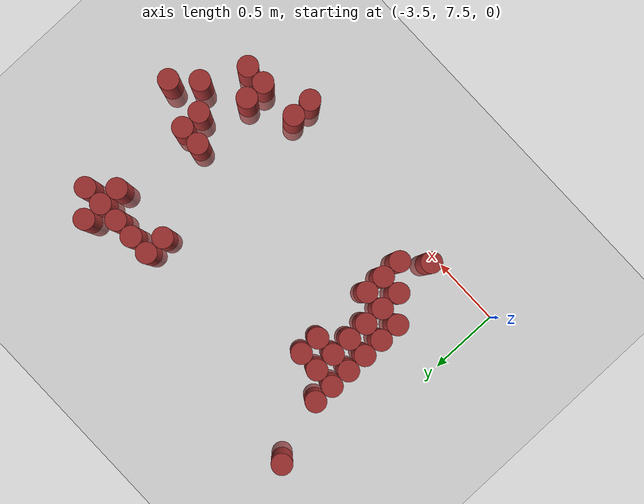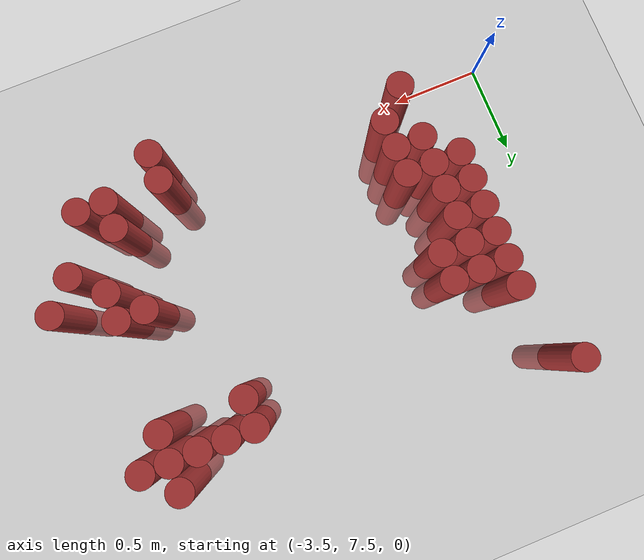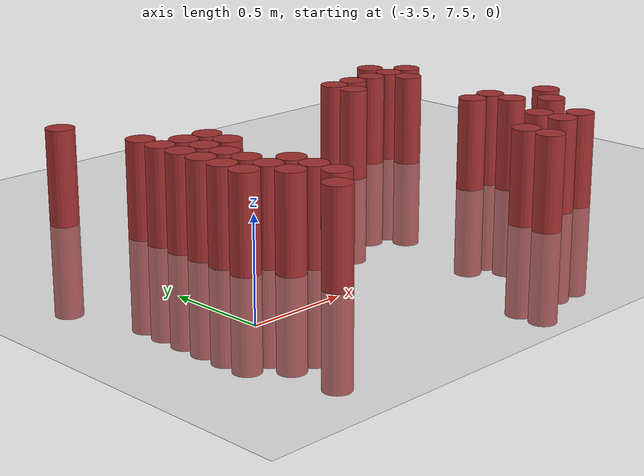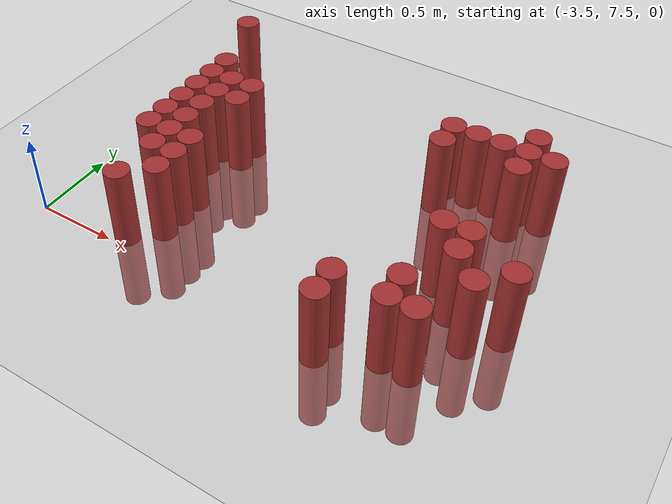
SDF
<sdf version="1.6">
 <world name="default">
  <model name="ground_plane">
   <static>1</static>
   <link name="link">
    <collision name="collision">
     <geometry><plane><normal>0 0 1</normal><size>100 100</size></plane></geometry>
     <surface><friction><ode><mu>100</mu><mu2>50</mu2></ode></friction></surface>
    </collision>
    <visual name="visual">
     <cast_shadows>0</cast_shadows>
     <geometry><plane><normal>0 0 1</normal><size>100 100</size></plane></geometry>
     <material>
      <script><uri>file://media/materials/scripts/gazebo.material</uri><name>Gazebo/Grey</name></script>
     </material>
    </visual>
   </link>
  </model>
  <model name="unit_cylinder_193">
   <static>1</static>
   <pose>-3.225000 9.225000 0.000000 0.000000 0.000000 0.000000</pose>
   <link name="link">
    <inertial>
     <mass>1</mass>
     <inertia><ixx>0.145833</ixx><ixy>0</ixy><ixz>0</ixz><iyy>0.145833</iyy><iyz>0</iyz><izz>0.125</izz></inertia>
    </inertial>
    <collision name="collision">
     <geometry><cylinder><radius>0.075000</radius><length>1</length></cylinder></geometry>
    </collision>
    <visual name="visual">
     <geometry><cylinder><radius>0.075000</radius><length>1</length></cylinder></geometry>
     <material>
      <ambient>0.648000 0.192000 0.192000 1</ambient>
      <diffuse>0.648000 0.192000 0.192000 1</diffuse>
     </material>
     <material>
      <script><name>Gazebo/Grey</name><uri>file://media/materials/scripts/gazebo.material</uri></script>
     </material>
    </visual>
    <sensor name="sensor_contact" type="contact"><contact><collision>collision</collision></contact></sensor>
   </link>
   <plugin filename="gz-sim-touchplugin-system" name="gz::sim::systems::TouchPlugin">
    <target>robot</target>
    <namespace>robot</namespace>
    <time>0.001</time>
    <enabled>true</enabled>
   </plugin>
  </model>
  <model name="unit_cylinder_194">
   <static>1</static>
   <pose>-3.075000 8.025000 0.000000 0.000000 0.000000 0.000000</pose>
   <link name="link">
    <inertial>
     <mass>1</mass>
     <inertia><ixx>0.145833</ixx><ixy>0</ixy><ixz>0</ixz><iyy>0.145833</iyy><iyz>0</iyz><izz>0.125</izz></inertia>
    </inertial>
    <collision name="collision">
     <geometry><cylinder><radius>0.075000</radius><length>1</length></cylinder></geometry>
    </collision>
    <visual name="visual">
     <geometry><cylinder><radius>0.075000</radius><length>1</length></cylinder></geometry>
     <material>
      <ambient>0.648000 0.192000 0.192000 1</ambient>
      <diffuse>0.648000 0.192000 0.192000 1</diffuse>
     </material>
     <material>
      <script><name>Gazebo/Grey</name><uri>file://media/materials/scripts/gazebo.material</uri></script>
     </material>
    </visual>
    <sensor name="sensor_contact" type="contact"><contact><collision>collision</collision></contact></sensor>
   </link>
   <plugin filename="gz-sim-touchplugin-system" name="gz::sim::systems::TouchPlugin">
    <target>robot</target>
    <namespace>robot</namespace>
    <time>0.001</time>
    <enabled>true</enabled>
   </plugin>
  </model>
  <model name="unit_cylinder_195">
   <static>1</static>
   <pose>-3.075000 8.175000 0.000000 0.000000 0.000000 0.000000</pose>
   <link name="link">
    <inertial>
     <mass>1</mass>
     <inertia><ixx>0.145833</ixx><ixy>0</ixy><ixz>0</ixz><iyy>0.145833</iyy><iyz>0</iyz><izz>0.125</izz></inertia>
    </inertial>
    <collision name="collision">
     <geometry><cylinder><radius>0.075000</radius><length>1</length></cylinder></geometry>
    </collision>
    <visual name="visual">
     <geometry><cylinder><radius>0.075000</radius><length>1</length></cylinder></geometry>
     <material>
      <ambient>0.648000 0.192000 0.192000 1</ambient>
      <diffuse>0.648000 0.192000 0.192000 1</diffuse>
     </material>
     <material>
      <script><name>Gazebo/Grey</name><uri>file://media/materials/scripts/gazebo.material</uri></script>
     </material>
    </visual>
    <sensor name="sensor_contact" type="contact"><contact><collision>collision</collision></contact></sensor>
   </link>
   <plugin filename="gz-sim-touchplugin-system" name="gz::sim::systems::TouchPlugin">
    <target>robot</target>
    <namespace>robot</namespace>
    <time>0.001</time>
    <enabled>true</enabled>
   </plugin>
  </model>
  <model name="unit_cylinder_196">
   <static>1</static>
   <pose>-3.075000 8.325000 0.000000 0.000000 0.000000 0.000000</pose>
   <link name="link">
    <inertial>
     <mass>1</mass>
     <inertia><ixx>0.145833</ixx><ixy>0</ixy><ixz>0</ixz><iyy>0.145833</iyy><iyz>0</iyz><izz>0.125</izz></inertia>
    </inertial>
    <collision name="collision">
     <geometry><cylinder><radius>0.075000</radius><length>1</length></cylinder></geometry>
    </collision>
    <visual name="visual">
     <geometry><cylinder><radius>0.075000</radius><length>1</length></cylinder></geometry>
     <material>
      <ambient>0.648000 0.192000 0.192000 1</ambient>
      <diffuse>0.648000 0.192000 0.192000 1</diffuse>
     </material>
     <material>
      <script><name>Gazebo/Grey</name><uri>file://media/materials/scripts/gazebo.material</uri></script>
     </material>
    </visual>
    <sensor name="sensor_contact" type="contact"><contact><collision>collision</collision></contact></sensor>
   </link>
   <plugin filename="gz-sim-touchplugin-system" name="gz::sim::systems::TouchPlugin">
    <target>robot</target>
    <namespace>robot</namespace>
    <time>0.001</time>
    <enabled>true</enabled>
   </plugin>
  </model>
  <model name="unit_cylinder_197">
   <static>1</static>
   <pose>-3.075000 8.475000 0.000000 0.000000 0.000000 0.000000</pose>
   <link name="link">
    <inertial>
     <mass>1</mass>
     <inertia><ixx>0.145833</ixx><ixy>0</ixy><ixz>0</ixz><iyy>0.145833</iyy><iyz>0</iyz><izz>0.125</izz></inertia>
    </inertial>
    <collision name="collision">
     <geometry><cylinder><radius>0.075000</radius><length>1</length></cylinder></geometry>
    </collision>
    <visual name="visual">
     <geometry><cylinder><radius>0.075000</radius><length>1</length></cylinder></geometry>
     <material>
      <ambient>0.648000 0.192000 0.192000 1</ambient>
      <diffuse>0.648000 0.192000 0.192000 1</diffuse>
     </material>
     <material>
      <script><name>Gazebo/Grey</name><uri>file://media/materials/scripts/gazebo.material</uri></script>
     </material>
    </visual>
    <sensor name="sensor_contact" type="contact"><contact><collision>collision</collision></contact></sensor>
   </link>
   <plugin filename="gz-sim-touchplugin-system" name="gz::sim::systems::TouchPlugin">
    <target>robot</target>
    <namespace>robot</namespace>
    <time>0.001</time>
    <enabled>true</enabled>
   </plugin>
  </model>
  <model name="unit_cylinder_198">
   <static>1</static>
   <pose>-3.075000 8.625000 0.000000 0.000000 0.000000 0.000000</pose>
   <link name="link">
    <inertial>
     <mass>1</mass>
     <inertia><ixx>0.145833</ixx><ixy>0</ixy><ixz>0</ixz><iyy>0.145833</iyy><iyz>0</iyz><izz>0.125</izz></inertia>
    </inertial>
    <collision name="collision">
     <geometry><cylinder><radius>0.075000</radius><length>1</length></cylinder></geometry>
    </collision>
    <visual name="visual">
     <geometry><cylinder><radius>0.075000</radius><length>1</length></cylinder></geometry>
     <material>
      <ambient>0.648000 0.192000 0.192000 1</ambient>
      <diffuse>0.648000 0.192000 0.192000 1</diffuse>
     </material>
     <material>
      <script><name>Gazebo/Grey</name><uri>file://media/materials/scripts/gazebo.material</uri></script>
     </material>
    </visual>
    <sensor name="sensor_contact" type="contact"><contact><collision>collision</collision></contact></sensor>
   </link>
   <plugin filename="gz-sim-touchplugin-system" name="gz::sim::systems::TouchPlugin">
    <target>robot</target>
    <namespace>robot</namespace>
    <time>0.001</time>
    <enabled>true</enabled>
   </plugin>
  </model>
  <model name="unit_cylinder_199">
   <static>1</static>
   <pose>-3.075000 8.775000 0.000000 0.000000 0.000000 0.000000</pose>
   <link name="link">
    <inertial>
     <mass>1</mass>
     <inertia><ixx>0.145833</ixx><ixy>0</ixy><ixz>0</ixz><iyy>0.145833</iyy><iyz>0</iyz><izz>0.125</izz></inertia>
    </inertial>
    <collision name="collision">
     <geometry><cylinder><radius>0.075000</radius><length>1</length></cylinder></geometry>
    </collision>
    <visual name="visual">
     <geometry><cylinder><radius>0.075000</radius><length>1</length></cylinder></geometry>
     <material>
      <ambient>0.648000 0.192000 0.192000 1</ambient>
      <diffuse>0.648000 0.192000 0.192000 1</diffuse>
     </material>
     <material>
      <script><name>Gazebo/Grey</name><uri>file://media/materials/scripts/gazebo.material</uri></script>
     </material>
    </visual>
    <sensor name="sensor_contact" type="contact"><contact><collision>collision</collision></contact></sensor>
   </link>
   <plugin filename="gz-sim-touchplugin-system" name="gz::sim::systems::TouchPlugin">
    <target>robot</target>
    <namespace>robot</namespace>
    <time>0.001</time>
    <enabled>true</enabled>
   </plugin>
  </model>
  <model name="unit_cylinder_200">
   <static>1</static>
   <pose>-2.925000 7.575000 0.000000 0.000000 0.000000 0.000000</pose>
   <link name="link">
    <inertial>
     <mass>1</mass>
     <inertia><ixx>0.145833</ixx><ixy>0</ixy><ixz>0</ixz><iyy>0.145833</iyy><iyz>0</iyz><izz>0.125</izz></inertia>
    </inertial>
    <collision name="collision">
     <geometry><cylinder><radius>0.075000</radius><length>1</length></cylinder></geometry>
    </collision>
    <visual name="visual">
     <geometry><cylinder><radius>0.075000</radius><length>1</length></cylinder></geometry>
     <material>
      <ambient>0.648000 0.192000 0.192000 1</ambient>
      <diffuse>0.648000 0.192000 0.192000 1</diffuse>
     </material>
     <material>
      <script><name>Gazebo/Grey</name><uri>file://media/materials/scripts/gazebo.material</uri></script>
     </material>
    </visual>
    <sensor name="sensor_contact" type="contact"><contact><collision>collision</collision></contact></sensor>
   </link>
   <plugin filename="gz-sim-touchplugin-system" name="gz::sim::systems::TouchPlugin">
    <target>robot</target>
    <namespace>robot</namespace>
    <time>0.001</time>
    <enabled>true</enabled>
   </plugin>
  </model>
  <model name="unit_cylinder_201">
   <static>1</static>
   <pose>-2.925000 7.875000 0.000000 0.000000 0.000000 0.000000</pose>
   <link name="link">
    <inertial>
     <mass>1</mass>
     <inertia><ixx>0.145833</ixx><ixy>0</ixy><ixz>0</ixz><iyy>0.145833</iyy><iyz>0</iyz><izz>0.125</izz></inertia>
    </inertial>
    <collision name="collision">
     <geometry><cylinder><radius>0.075000</radius><length>1</length></cylinder></geometry>
    </collision>
    <visual name="visual">
     <geometry><cylinder><radius>0.075000</radius><length>1</length></cylinder></geometry>
     <material>
      <ambient>0.648000 0.192000 0.192000 1</ambient>
      <diffuse>0.648000 0.192000 0.192000 1</diffuse>
     </material>
     <material>
      <script><name>Gazebo/Grey</name><uri>file://media/materials/scripts/gazebo.material</uri></script>
     </material>
    </visual>
    <sensor name="sensor_contact" type="contact"><contact><collision>collision</collision></contact></sensor>
   </link>
   <plugin filename="gz-sim-touchplugin-system" name="gz::sim::systems::TouchPlugin">
    <target>robot</target>
    <namespace>robot</namespace>
    <time>0.001</time>
    <enabled>true</enabled>
   </plugin>
  </model>
  <model name="unit_cylinder_202">
   <static>1</static>
   <pose>-2.925000 8.025000 0.000000 0.000000 0.000000 0.000000</pose>
   <link name="link">
    <inertial>
     <mass>1</mass>
     <inertia><ixx>0.145833</ixx><ixy>0</ixy><ixz>0</ixz><iyy>0.145833</iyy><iyz>0</iyz><izz>0.125</izz></inertia>
    </inertial>
    <collision name="collision">
     <geometry><cylinder><radius>0.075000</radius><length>1</length></cylinder></geometry>
    </collision>
    <visual name="visual">
     <geometry><cylinder><radius>0.075000</radius><length>1</length></cylinder></geometry>
     <material>
      <ambient>0.648000 0.192000 0.192000 1</ambient>
      <diffuse>0.648000 0.192000 0.192000 1</diffuse>
     </material>
     <material>
      <script><name>Gazebo/Grey</name><uri>file://media/materials/scripts/gazebo.material</uri></script>
     </material>
    </visual>
    <sensor name="sensor_contact" type="contact"><contact><collision>collision</collision></contact></sensor>
   </link>
   <plugin filename="gz-sim-touchplugin-system" name="gz::sim::systems::TouchPlugin">
    <target>robot</target>
    <namespace>robot</namespace>
    <time>0.001</time>
    <enabled>true</enabled>
   </plugin>
  </model>
  <model name="unit_cylinder_203">
   <static>1</static>
   <pose>-2.925000 8.175000 0.000000 0.000000 0.000000 0.000000</pose>
   <link name="link">
    <inertial>
     <mass>1</mass>
     <inertia><ixx>0.145833</ixx><ixy>0</ixy><ixz>0</ixz><iyy>0.145833</iyy><iyz>0</iyz><izz>0.125</izz></inertia>
    </inertial>
    <collision name="collision">
     <geometry><cylinder><radius>0.075000</radius><length>1</length></cylinder></geometry>
    </collision>
    <visual name="visual">
     <geometry><cylinder><radius>0.075000</radius><length>1</length></cylinder></geometry>
     <material>
      <ambient>0.648000 0.192000 0.192000 1</ambient>
      <diffuse>0.648000 0.192000 0.192000 1</diffuse>
     </material>
     <material>
      <script><name>Gazebo/Grey</name><uri>file://media/materials/scripts/gazebo.material</uri></script>
     </material>
    </visual>
    <sensor name="sensor_contact" type="contact"><contact><collision>collision</collision></contact></sensor>
   </link>
   <plugin filename="gz-sim-touchplugin-system" name="gz::sim::systems::TouchPlugin">
    <target>robot</target>
    <namespace>robot</namespace>
    <time>0.001</time>
    <enabled>true</enabled>
   </plugin>
  </model>
  <model name="unit_cylinder_204">
   <static>1</static>
   <pose>-2.925000 8.325000 0.000000 0.000000 0.000000 0.000000</pose>
   <link name="link">
    <inertial>
     <mass>1</mass>
     <inertia><ixx>0.145833</ixx><ixy>0</ixy><ixz>0</ixz><iyy>0.145833</iyy><iyz>0</iyz><izz>0.125</izz></inertia>
    </inertial>
    <collision name="collision">
     <geometry><cylinder><radius>0.075000</radius><length>1</length></cylinder></geometry>
    </collision>
    <visual name="visual">
     <geometry><cylinder><radius>0.075000</radius><length>1</length></cylinder></geometry>
     <material>
      <ambient>0.648000 0.192000 0.192000 1</ambient>
      <diffuse>0.648000 0.192000 0.192000 1</diffuse>
     </material>
     <material>
      <script><name>Gazebo/Grey</name><uri>file://media/materials/scripts/gazebo.material</uri></script>
     </material>
    </visual>
    <sensor name="sensor_contact" type="contact"><contact><collision>collision</collision></contact></sensor>
   </link>
   <plugin filename="gz-sim-touchplugin-system" name="gz::sim::systems::TouchPlugin">
    <target>robot</target>
    <namespace>robot</namespace>
    <time>0.001</time>
    <enabled>true</enabled>
   </plugin>
  </model>
  <model name="unit_cylinder_205">
   <static>1</static>
   <pose>-2.925000 8.475000 0.000000 0.000000 0.000000 0.000000</pose>
   <link name="link">
    <inertial>
     <mass>1</mass>
     <inertia><ixx>0.145833</ixx><ixy>0</ixy><ixz>0</ixz><iyy>0.145833</iyy><iyz>0</iyz><izz>0.125</izz></inertia>
    </inertial>
    <collision name="collision">
     <geometry><cylinder><radius>0.075000</radius><length>1</length></cylinder></geometry>
    </collision>
    <visual name="visual">
     <geometry><cylinder><radius>0.075000</radius><length>1</length></cylinder></geometry>
     <material>
      <ambient>0.648000 0.192000 0.192000 1</ambient>
      <diffuse>0.648000 0.192000 0.192000 1</diffuse>
     </material>
     <material>
      <script><name>Gazebo/Grey</name><uri>file://media/materials/scripts/gazebo.material</uri></script>
     </material>
    </visual>
    <sensor name="sensor_contact" type="contact"><contact><collision>collision</collision></contact></sensor>
   </link>
   <plugin filename="gz-sim-touchplugin-system" name="gz::sim::systems::TouchPlugin">
    <target>robot</target>
    <namespace>robot</namespace>
    <time>0.001</time>
    <enabled>true</enabled>
   </plugin>
  </model>
  <model name="unit_cylinder_206">
   <static>1</static>
   <pose>-2.925000 8.625000 0.000000 0.000000 0.000000 0.000000</pose>
   <link name="link">
    <inertial>
     <mass>1</mass>
     <inertia><ixx>0.145833</ixx><ixy>0</ixy><ixz>0</ixz><iyy>0.145833</iyy><iyz>0</iyz><izz>0.125</izz></inertia>
    </inertial>
    <collision name="collision">
     <geometry><cylinder><radius>0.075000</radius><length>1</length></cylinder></geometry>
    </collision>
    <visual name="visual">
     <geometry><cylinder><radius>0.075000</radius><length>1</length></cylinder></geometry>
     <material>
      <ambient>0.648000 0.192000 0.192000 1</ambient>
      <diffuse>0.648000 0.192000 0.192000 1</diffuse>
     </material>
     <material>
      <script><name>Gazebo/Grey</name><uri>file://media/materials/scripts/gazebo.material</uri></script>
     </material>
    </visual>
    <sensor name="sensor_contact" type="contact"><contact><collision>collision</collision></contact></sensor>
   </link>
   <plugin filename="gz-sim-touchplugin-system" name="gz::sim::systems::TouchPlugin">
    <target>robot</target>
    <namespace>robot</namespace>
    <time>0.001</time>
    <enabled>true</enabled>
   </plugin>
  </model>
  <model name="unit_cylinder_207">
   <static>1</static>
   <pose>-2.775000 7.725000 0.000000 0.000000 0.000000 0.000000</pose>
   <link name="link">
    <inertial>
     <mass>1</mass>
     <inertia><ixx>0.145833</ixx><ixy>0</ixy><ixz>0</ixz><iyy>0.145833</iyy><iyz>0</iyz><izz>0.125</izz></inertia>
    </inertial>
    <collision name="collision">
     <geometry><cylinder><radius>0.075000</radius><length>1</length></cylinder></geometry>
    </collision>
    <visual name="visual">
     <geometry><cylinder><radius>0.075000</radius><length>1</length></cylinder></geometry>
     <material>
      <ambient>0.648000 0.192000 0.192000 1</ambient>
      <diffuse>0.648000 0.192000 0.192000 1</diffuse>
     </material>
     <material>
      <script><name>Gazebo/Grey</name><uri>file://media/materials/scripts/gazebo.material</uri></script>
     </material>
    </visual>
    <sensor name="sensor_contact" type="contact"><contact><collision>collision</collision></contact></sensor>
   </link>
   <plugin filename="gz-sim-touchplugin-system" name="gz::sim::systems::TouchPlugin">
    <target>robot</target>
    <namespace>robot</namespace>
    <time>0.001</time>
    <enabled>true</enabled>
   </plugin>
  </model>
  <model name="unit_cylinder_208">
   <static>1</static>
   <pose>-2.775000 7.875000 0.000000 0.000000 0.000000 0.000000</pose>
   <link name="link">
    <inertial>
     <mass>1</mass>
     <inertia><ixx>0.145833</ixx><ixy>0</ixy><ixz>0</ixz><iyy>0.145833</iyy><iyz>0</iyz><izz>0.125</izz></inertia>
    </inertial>
    <collision name="collision">
     <geometry><cylinder><radius>0.075000</radius><length>1</length></cylinder></geometry>
    </collision>
    <visual name="visual">
     <geometry><cylinder><radius>0.075000</radius><length>1</length></cylinder></geometry>
     <material>
      <ambient>0.648000 0.192000 0.192000 1</ambient>
      <diffuse>0.648000 0.192000 0.192000 1</diffuse>
     </material>
     <material>
      <script><name>Gazebo/Grey</name><uri>file://media/materials/scripts/gazebo.material</uri></script>
     </material>
    </visual>
    <sensor name="sensor_contact" type="contact"><contact><collision>collision</collision></contact></sensor>
   </link>
   <plugin filename="gz-sim-touchplugin-system" name="gz::sim::systems::TouchPlugin">
    <target>robot</target>
    <namespace>robot</namespace>
    <time>0.001</time>
    <enabled>true</enabled>
   </plugin>
  </model>
  <model name="unit_cylinder_209">
   <static>1</static>
   <pose>-2.775000 8.025000 0.000000 0.000000 0.000000 0.000000</pose>
   <link name="link">
    <inertial>
     <mass>1</mass>
     <inertia><ixx>0.145833</ixx><ixy>0</ixy><ixz>0</ixz><iyy>0.145833</iyy><iyz>0</iyz><izz>0.125</izz></inertia>
    </inertial>
    <collision name="collision">
     <geometry><cylinder><radius>0.075000</radius><length>1</length></cylinder></geometry>
    </collision>
    <visual name="visual">
     <geometry><cylinder><radius>0.075000</radius><length>1</length></cylinder></geometry>
     <material>
      <ambient>0.648000 0.192000 0.192000 1</ambient>
      <diffuse>0.648000 0.192000 0.192000 1</diffuse>
     </material>
     <material>
      <script><name>Gazebo/Grey</name><uri>file://media/materials/scripts/gazebo.material</uri></script>
     </material>
    </visual>
    <sensor name="sensor_contact" type="contact"><contact><collision>collision</collision></contact></sensor>
   </link>
   <plugin filename="gz-sim-touchplugin-system" name="gz::sim::systems::TouchPlugin">
    <target>robot</target>
    <namespace>robot</namespace>
    <time>0.001</time>
    <enabled>true</enabled>
   </plugin>
  </model>
  <model name="unit_cylinder_210">
   <static>1</static>
   <pose>-2.775000 8.475000 0.000000 0.000000 0.000000 0.000000</pose>
   <link name="link">
    <inertial>
     <mass>1</mass>
     <inertia><ixx>0.145833</ixx><ixy>0</ixy><ixz>0</ixz><iyy>0.145833</iyy><iyz>0</iyz><izz>0.125</izz></inertia>
    </inertial>
    <collision name="collision">
     <geometry><cylinder><radius>0.075000</radius><length>1</length></cylinder></geometry>
    </collision>
    <visual name="visual">
     <geometry><cylinder><radius>0.075000</radius><length>1</length></cylinder></geometry>
     <material>
      <ambient>0.648000 0.192000 0.192000 1</ambient>
      <diffuse>0.648000 0.192000 0.192000 1</diffuse>
     </material>
     <material>
      <script><name>Gazebo/Grey</name><uri>file://media/materials/scripts/gazebo.material</uri></script>
     </material>
    </visual>
    <sensor name="sensor_contact" type="contact"><contact><collision>collision</collision></contact></sensor>
   </link>
   <plugin filename="gz-sim-touchplugin-system" name="gz::sim::systems::TouchPlugin">
    <target>robot</target>
    <namespace>robot</namespace>
    <time>0.001</time>
    <enabled>true</enabled>
   </plugin>
  </model>
  <model name="unit_cylinder_211">
   <static>1</static>
   <pose>-2.775000 8.625000 0.000000 0.000000 0.000000 0.000000</pose>
   <link name="link">
    <inertial>
     <mass>1</mass>
     <inertia><ixx>0.145833</ixx><ixy>0</ixy><ixz>0</ixz><iyy>0.145833</iyy><iyz>0</iyz><izz>0.125</izz></inertia>
    </inertial>
    <collision name="collision">
     <geometry><cylinder><radius>0.075000</radius><length>1</length></cylinder></geometry>
    </collision>
    <visual name="visual">
     <geometry><cylinder><radius>0.075000</radius><length>1</length></cylinder></geometry>
     <material>
      <ambient>0.648000 0.192000 0.192000 1</ambient>
      <diffuse>0.648000 0.192000 0.192000 1</diffuse>
     </material>
     <material>
      <script><name>Gazebo/Grey</name><uri>file://media/materials/scripts/gazebo.material</uri></script>
     </material>
    </visual>
    <sensor name="sensor_contact" type="contact"><contact><collision>collision</collision></contact></sensor>
   </link>
   <plugin filename="gz-sim-touchplugin-system" name="gz::sim::systems::TouchPlugin">
    <target>robot</target>
    <namespace>robot</namespace>
    <time>0.001</time>
    <enabled>true</enabled>
   </plugin>
  </model>
  <model name="unit_cylinder_227">
   <static>1</static>
   <pose>-1.575000 7.425000 0.000000 0.000000 0.000000 0.000000</pose>
   <link name="link">
    <inertial>
     <mass>1</mass>
     <inertia><ixx>0.145833</ixx><ixy>0</ixy><ixz>0</ixz><iyy>0.145833</iyy><iyz>0</iyz><izz>0.125</izz></inertia>
    </inertial>
    <collision name="collision">
     <geometry><cylinder><radius>0.075000</radius><length>1</length></cylinder></geometry>
    </collision>
    <visual name="visual">
     <geometry><cylinder><radius>0.075000</radius><length>1</length></cylinder></geometry>
     <material>
      <ambient>0.648000 0.192000 0.192000 1</ambient>
      <diffuse>0.648000 0.192000 0.192000 1</diffuse>
     </material>
     <material>
      <script><name>Gazebo/Grey</name><uri>file://media/materials/scripts/gazebo.material</uri></script>
     </material>
    </visual>
    <sensor name="sensor_contact" type="contact"><contact><collision>collision</collision></contact></sensor>
   </link>
   <plugin filename="gz-sim-touchplugin-system" name="gz::sim::systems::TouchPlugin">
    <target>robot</target>
    <namespace>robot</namespace>
    <time>0.001</time>
    <enabled>true</enabled>
   </plugin>
  </model>
  <model name="unit_cylinder_228">
   <static>1</static>
   <pose>-1.575000 7.575000 0.000000 0.000000 0.000000 0.000000</pose>
   <link name="link">
    <inertial>
     <mass>1</mass>
     <inertia><ixx>0.145833</ixx><ixy>0</ixy><ixz>0</ixz><iyy>0.145833</iyy><iyz>0</iyz><izz>0.125</izz></inertia>
    </inertial>
    <collision name="collision">
     <geometry><cylinder><radius>0.075000</radius><length>1</length></cylinder></geometry>
    </collision>
    <visual name="visual">
     <geometry><cylinder><radius>0.075000</radius><length>1</length></cylinder></geometry>
     <material>
      <ambient>0.648000 0.192000 0.192000 1</ambient>
      <diffuse>0.648000 0.192000 0.192000 1</diffuse>
     </material>
     <material>
      <script><name>Gazebo/Grey</name><uri>file://media/materials/scripts/gazebo.material</uri></script>
     </material>
    </visual>
    <sensor name="sensor_contact" type="contact"><contact><collision>collision</collision></contact></sensor>
   </link>
   <plugin filename="gz-sim-touchplugin-system" name="gz::sim::systems::TouchPlugin">
    <target>robot</target>
    <namespace>robot</namespace>
    <time>0.001</time>
    <enabled>true</enabled>
   </plugin>
  </model>
  <model name="unit_cylinder_229">
   <static>1</static>
   <pose>-1.575000 8.775000 0.000000 0.000000 0.000000 0.000000</pose>
   <link name="link">
    <inertial>
     <mass>1</mass>
     <inertia><ixx>0.145833</ixx><ixy>0</ixy><ixz>0</ixz><iyy>0.145833</iyy><iyz>0</iyz><izz>0.125</izz></inertia>
    </inertial>
    <collision name="collision">
     <geometry><cylinder><radius>0.075000</radius><length>1</length></cylinder></geometry>
    </collision>
    <visual name="visual">
     <geometry><cylinder><radius>0.075000</radius><length>1</length></cylinder></geometry>
     <material>
      <ambient>0.648000 0.192000 0.192000 1</ambient>
      <diffuse>0.648000 0.192000 0.192000 1</diffuse>
     </material>
     <material>
      <script><name>Gazebo/Grey</name><uri>file://media/materials/scripts/gazebo.material</uri></script>
     </material>
    </visual>
    <sensor name="sensor_contact" type="contact"><contact><collision>collision</collision></contact></sensor>
   </link>
   <plugin filename="gz-sim-touchplugin-system" name="gz::sim::systems::TouchPlugin">
    <target>robot</target>
    <namespace>robot</namespace>
    <time>0.001</time>
    <enabled>true</enabled>
   </plugin>
  </model>
  <model name="unit_cylinder_230">
   <static>1</static>
   <pose>-1.575000 8.925000 0.000000 0.000000 0.000000 0.000000</pose>
   <link name="link">
    <inertial>
     <mass>1</mass>
     <inertia><ixx>0.145833</ixx><ixy>0</ixy><ixz>0</ixz><iyy>0.145833</iyy><iyz>0</iyz><izz>0.125</izz></inertia>
    </inertial>
    <collision name="collision">
     <geometry><cylinder><radius>0.075000</radius><length>1</length></cylinder></geometry>
    </collision>
    <visual name="visual">
     <geometry><cylinder><radius>0.075000</radius><length>1</length></cylinder></geometry>
     <material>
      <ambient>0.648000 0.192000 0.192000 1</ambient>
      <diffuse>0.648000 0.192000 0.192000 1</diffuse>
     </material>
     <material>
      <script><name>Gazebo/Grey</name><uri>file://media/materials/scripts/gazebo.material</uri></script>
     </material>
    </visual>
    <sensor name="sensor_contact" type="contact"><contact><collision>collision</collision></contact></sensor>
   </link>
   <plugin filename="gz-sim-touchplugin-system" name="gz::sim::systems::TouchPlugin">
    <target>robot</target>
    <namespace>robot</namespace>
    <time>0.001</time>
    <enabled>true</enabled>
   </plugin>
  </model>
  <model name="unit_cylinder_238">
   <static>1</static>
   <pose>-1.425000 8.925000 0.000000 0.000000 0.000000 0.000000</pose>
   <link name="link">
    <inertial>
     <mass>1</mass>
     <inertia><ixx>0.145833</ixx><ixy>0</ixy><ixz>0</ixz><iyy>0.145833</iyy><iyz>0</iyz><izz>0.125</izz></inertia>
    </inertial>
    <collision name="collision">
     <geometry><cylinder><radius>0.075000</radius><length>1</length></cylinder></geometry>
    </collision>
    <visual name="visual">
     <geometry><cylinder><radius>0.075000</radius><length>1</length></cylinder></geometry>
     <material>
      <ambient>0.648000 0.192000 0.192000 1</ambient>
      <diffuse>0.648000 0.192000 0.192000 1</diffuse>
     </material>
     <material>
      <script><name>Gazebo/Grey</name><uri>file://media/materials/scripts/gazebo.material</uri></script>
     </material>
    </visual>
    <sensor name="sensor_contact" type="contact"><contact><collision>collision</collision></contact></sensor>
   </link>
   <plugin filename="gz-sim-touchplugin-system" name="gz::sim::systems::TouchPlugin">
    <target>robot</target>
    <namespace>robot</namespace>
    <time>0.001</time>
    <enabled>true</enabled>
   </plugin>
  </model>
  <model name="unit_cylinder_243">
   <static>1</static>
   <pose>-1.275000 7.575000 0.000000 0.000000 0.000000 0.000000</pose>
   <link name="link">
    <inertial>
     <mass>1</mass>
     <inertia><ixx>0.145833</ixx><ixy>0</ixy><ixz>0</ixz><iyy>0.145833</iyy><iyz>0</iyz><izz>0.125</izz></inertia>
    </inertial>
    <collision name="collision">
     <geometry><cylinder><radius>0.075000</radius><length>1</length></cylinder></geometry>
    </collision>
    <visual name="visual">
     <geometry><cylinder><radius>0.075000</radius><length>1</length></cylinder></geometry>
     <material>
      <ambient>0.648000 0.192000 0.192000 1</ambient>
      <diffuse>0.648000 0.192000 0.192000 1</diffuse>
     </material>
     <material>
      <script><name>Gazebo/Grey</name><uri>file://media/materials/scripts/gazebo.material</uri></script>
     </material>
    </visual>
    <sensor name="sensor_contact" type="contact"><contact><collision>collision</collision></contact></sensor>
   </link>
   <plugin filename="gz-sim-touchplugin-system" name="gz::sim::systems::TouchPlugin">
    <target>robot</target>
    <namespace>robot</namespace>
    <time>0.001</time>
    <enabled>true</enabled>
   </plugin>
  </model>
  <model name="unit_cylinder_244">
   <static>1</static>
   <pose>-1.275000 7.725000 0.000000 0.000000 0.000000 0.000000</pose>
   <link name="link">
    <inertial>
     <mass>1</mass>
     <inertia><ixx>0.145833</ixx><ixy>0</ixy><ixz>0</ixz><iyy>0.145833</iyy><iyz>0</iyz><izz>0.125</izz></inertia>
    </inertial>
    <collision name="collision">
     <geometry><cylinder><radius>0.075000</radius><length>1</length></cylinder></geometry>
    </collision>
    <visual name="visual">
     <geometry><cylinder><radius>0.075000</radius><length>1</length></cylinder></geometry>
     <material>
      <ambient>0.648000 0.192000 0.192000 1</ambient>
      <diffuse>0.648000 0.192000 0.192000 1</diffuse>
     </material>
     <material>
      <script><name>Gazebo/Grey</name><uri>file://media/materials/scripts/gazebo.material</uri></script>
     </material>
    </visual>
    <sensor name="sensor_contact" type="contact"><contact><collision>collision</collision></contact></sensor>
   </link>
   <plugin filename="gz-sim-touchplugin-system" name="gz::sim::systems::TouchPlugin">
    <target>robot</target>
    <namespace>robot</namespace>
    <time>0.001</time>
    <enabled>true</enabled>
   </plugin>
  </model>
  <model name="unit_cylinder_245">
   <static>1</static>
   <pose>-1.275000 8.175000 0.000000 0.000000 0.000000 0.000000</pose>
   <link name="link">
    <inertial>
     <mass>1</mass>
     <inertia><ixx>0.145833</ixx><ixy>0</ixy><ixz>0</ixz><iyy>0.145833</iyy><iyz>0</iyz><izz>0.125</izz></inertia>
    </inertial>
    <collision name="collision">
     <geometry><cylinder><radius>0.075000</radius><length>1</length></cylinder></geometry>
    </collision>
    <visual name="visual">
     <geometry><cylinder><radius>0.075000</radius><length>1</length></cylinder></geometry>
     <material>
      <ambient>0.648000 0.192000 0.192000 1</ambient>
      <diffuse>0.648000 0.192000 0.192000 1</diffuse>
     </material>
     <material>
      <script><name>Gazebo/Grey</name><uri>file://media/materials/scripts/gazebo.material</uri></script>
     </material>
    </visual>
    <sensor name="sensor_contact" type="contact"><contact><collision>collision</collision></contact></sensor>
   </link>
   <plugin filename="gz-sim-touchplugin-system" name="gz::sim::systems::TouchPlugin">
    <target>robot</target>
    <namespace>robot</namespace>
    <time>0.001</time>
    <enabled>true</enabled>
   </plugin>
  </model>
  <model name="unit_cylinder_246">
   <static>1</static>
   <pose>-1.275000 8.925000 0.000000 0.000000 0.000000 0.000000</pose>
   <link name="link">
    <inertial>
     <mass>1</mass>
     <inertia><ixx>0.145833</ixx><ixy>0</ixy><ixz>0</ixz><iyy>0.145833</iyy><iyz>0</iyz><izz>0.125</izz></inertia>
    </inertial>
    <collision name="collision">
     <geometry><cylinder><radius>0.075000</radius><length>1</length></cylinder></geometry>
    </collision>
    <visual name="visual">
     <geometry><cylinder><radius>0.075000</radius><length>1</length></cylinder></geometry>
     <material>
      <ambient>0.648000 0.192000 0.192000 1</ambient>
      <diffuse>0.648000 0.192000 0.192000 1</diffuse>
     </material>
     <material>
      <script><name>Gazebo/Grey</name><uri>file://media/materials/scripts/gazebo.material</uri></script>
     </material>
    </visual>
    <sensor name="sensor_contact" type="contact"><contact><collision>collision</collision></contact></sensor>
   </link>
   <plugin filename="gz-sim-touchplugin-system" name="gz::sim::systems::TouchPlugin">
    <target>robot</target>
    <namespace>robot</namespace>
    <time>0.001</time>
    <enabled>true</enabled>
   </plugin>
  </model>
  <model name="unit_cylinder_247">
   <static>1</static>
   <pose>-1.125000 7.575000 0.000000 0.000000 0.000000 0.000000</pose>
   <link name="link">
    <inertial>
     <mass>1</mass>
     <inertia><ixx>0.145833</ixx><ixy>0</ixy><ixz>0</ixz><iyy>0.145833</iyy><iyz>0</iyz><izz>0.125</izz></inertia>
    </inertial>
    <collision name="collision">
     <geometry><cylinder><radius>0.075000</radius><length>1</length></cylinder></geometry>
    </collision>
    <visual name="visual">
     <geometry><cylinder><radius>0.075000</radius><length>1</length></cylinder></geometry>
     <material>
      <ambient>0.648000 0.192000 0.192000 1</ambient>
      <diffuse>0.648000 0.192000 0.192000 1</diffuse>
     </material>
     <material>
      <script><name>Gazebo/Grey</name><uri>file://media/materials/scripts/gazebo.material</uri></script>
     </material>
    </visual>
    <sensor name="sensor_contact" type="contact"><contact><collision>collision</collision></contact></sensor>
   </link>
   <plugin filename="gz-sim-touchplugin-system" name="gz::sim::systems::TouchPlugin">
    <target>robot</target>
    <namespace>robot</namespace>
    <time>0.001</time>
    <enabled>true</enabled>
   </plugin>
  </model>
  <model name="unit_cylinder_248">
   <static>1</static>
   <pose>-1.125000 8.025000 0.000000 0.000000 0.000000 0.000000</pose>
   <link name="link">
    <inertial>
     <mass>1</mass>
     <inertia><ixx>0.145833</ixx><ixy>0</ixy><ixz>0</ixz><iyy>0.145833</iyy><iyz>0</iyz><izz>0.125</izz></inertia>
    </inertial>
    <collision name="collision">
     <geometry><cylinder><radius>0.075000</radius><length>1</length></cylinder></geometry>
    </collision>
    <visual name="visual">
     <geometry><cylinder><radius>0.075000</radius><length>1</length></cylinder></geometry>
     <material>
      <ambient>0.648000 0.192000 0.192000 1</ambient>
      <diffuse>0.648000 0.192000 0.192000 1</diffuse>
     </material>
     <material>
      <script><name>Gazebo/Grey</name><uri>file://media/materials/scripts/gazebo.material</uri></script>
     </material>
    </visual>
    <sensor name="sensor_contact" type="contact"><contact><collision>collision</collision></contact></sensor>
   </link>
   <plugin filename="gz-sim-touchplugin-system" name="gz::sim::systems::TouchPlugin">
    <target>robot</target>
    <namespace>robot</namespace>
    <time>0.001</time>
    <enabled>true</enabled>
   </plugin>
  </model>
  <model name="unit_cylinder_249">
   <static>1</static>
   <pose>-1.125000 8.175000 0.000000 0.000000 0.000000 0.000000</pose>
   <link name="link">
    <inertial>
     <mass>1</mass>
     <inertia><ixx>0.145833</ixx><ixy>0</ixy><ixz>0</ixz><iyy>0.145833</iyy><iyz>0</iyz><izz>0.125</izz></inertia>
    </inertial>
    <collision name="collision">
     <geometry><cylinder><radius>0.075000</radius><length>1</length></cylinder></geometry>
    </collision>
    <visual name="visual">
     <geometry><cylinder><radius>0.075000</radius><length>1</length></cylinder></geometry>
     <material>
      <ambient>0.648000 0.192000 0.192000 1</ambient>
      <diffuse>0.648000 0.192000 0.192000 1</diffuse>
     </material>
     <material>
      <script><name>Gazebo/Grey</name><uri>file://media/materials/scripts/gazebo.material</uri></script>
     </material>
    </visual>
    <sensor name="sensor_contact" type="contact"><contact><collision>collision</collision></contact></sensor>
   </link>
   <plugin filename="gz-sim-touchplugin-system" name="gz::sim::systems::TouchPlugin">
    <target>robot</target>
    <namespace>robot</namespace>
    <time>0.001</time>
    <enabled>true</enabled>
   </plugin>
  </model>
  <model name="unit_cylinder_250">
   <static>1</static>
   <pose>-1.125000 8.775000 0.000000 0.000000 0.000000 0.000000</pose>
   <link name="link">
    <inertial>
     <mass>1</mass>
     <inertia><ixx>0.145833</ixx><ixy>0</ixy><ixz>0</ixz><iyy>0.145833</iyy><iyz>0</iyz><izz>0.125</izz></inertia>
    </inertial>
    <collision name="collision">
     <geometry><cylinder><radius>0.075000</radius><length>1</length></cylinder></geometry>
    </collision>
    <visual name="visual">
     <geometry><cylinder><radius>0.075000</radius><length>1</length></cylinder></geometry>
     <material>
      <ambient>0.648000 0.192000 0.192000 1</ambient>
      <diffuse>0.648000 0.192000 0.192000 1</diffuse>
     </material>
     <material>
      <script><name>Gazebo/Grey</name><uri>file://media/materials/scripts/gazebo.material</uri></script>
     </material>
    </visual>
    <sensor name="sensor_contact" type="contact"><contact><collision>collision</collision></contact></sensor>
   </link>
   <plugin filename="gz-sim-touchplugin-system" name="gz::sim::systems::TouchPlugin">
    <target>robot</target>
    <namespace>robot</namespace>
    <time>0.001</time>
    <enabled>true</enabled>
   </plugin>
  </model>
  <model name="unit_cylinder_251">
   <static>1</static>
   <pose>-1.125000 8.925000 0.000000 0.000000 0.000000 0.000000</pose>
   <link name="link">
    <inertial>
     <mass>1</mass>
     <inertia><ixx>0.145833</ixx><ixy>0</ixy><ixz>0</ixz><iyy>0.145833</iyy><iyz>0</iyz><izz>0.125</izz></inertia>
    </inertial>
    <collision name="collision">
     <geometry><cylinder><radius>0.075000</radius><length>1</length></cylinder></geometry>
    </collision>
    <visual name="visual">
     <geometry><cylinder><radius>0.075000</radius><length>1</length></cylinder></geometry>
     <material>
      <ambient>0.648000 0.192000 0.192000 1</ambient>
      <diffuse>0.648000 0.192000 0.192000 1</diffuse>
     </material>
     <material>
      <script><name>Gazebo/Grey</name><uri>file://media/materials/scripts/gazebo.material</uri></script>
     </material>
    </visual>
    <sensor name="sensor_contact" type="contact"><contact><collision>collision</collision></contact></sensor>
   </link>
   <plugin filename="gz-sim-touchplugin-system" name="gz::sim::systems::TouchPlugin">
    <target>robot</target>
    <namespace>robot</namespace>
    <time>0.001</time>
    <enabled>true</enabled>
   </plugin>
  </model>
  <model name="unit_cylinder_252">
   <static>1</static>
   <pose>-1.125000 9.075000 0.000000 0.000000 0.000000 0.000000</pose>
   <link name="link">
    <inertial>
     <mass>1</mass>
     <inertia><ixx>0.145833</ixx><ixy>0</ixy><ixz>0</ixz><iyy>0.145833</iyy><iyz>0</iyz><izz>0.125</izz></inertia>
    </inertial>
    <collision name="collision">
     <geometry><cylinder><radius>0.075000</radius><length>1</length></cylinder></geometry>
    </collision>
    <visual name="visual">
     <geometry><cylinder><radius>0.075000</radius><length>1</length></cylinder></geometry>
     <material>
      <ambient>0.648000 0.192000 0.192000 1</ambient>
      <diffuse>0.648000 0.192000 0.192000 1</diffuse>
     </material>
     <material>
      <script><name>Gazebo/Grey</name><uri>file://media/materials/scripts/gazebo.material</uri></script>
     </material>
    </visual>
    <sensor name="sensor_contact" type="contact"><contact><collision>collision</collision></contact></sensor>
   </link>
   <plugin filename="gz-sim-touchplugin-system" name="gz::sim::systems::TouchPlugin">
    <target>robot</target>
    <namespace>robot</namespace>
    <time>0.001</time>
    <enabled>true</enabled>
   </plugin>
  </model>
  <model name="unit_cylinder_253">
   <static>1</static>
   <pose>-0.975000 7.875000 0.000000 0.000000 0.000000 0.000000</pose>
   <link name="link">
    <inertial>
     <mass>1</mass>
     <inertia><ixx>0.145833</ixx><ixy>0</ixy><ixz>0</ixz><iyy>0.145833</iyy><iyz>0</iyz><izz>0.125</izz></inertia>
    </inertial>
    <collision name="collision">
     <geometry><cylinder><radius>0.075000</radius><length>1</length></cylinder></geometry>
    </collision>
    <visual name="visual">
     <geometry><cylinder><radius>0.075000</radius><length>1</length></cylinder></geometry>
     <material>
      <ambient>0.648000 0.192000 0.192000 1</ambient>
      <diffuse>0.648000 0.192000 0.192000 1</diffuse>
     </material>
     <material>
      <script><name>Gazebo/Grey</name><uri>file://media/materials/scripts/gazebo.material</uri></script>
     </material>
    </visual>
    <sensor name="sensor_contact" type="contact"><contact><collision>collision</collision></contact></sensor>
   </link>
   <plugin filename="gz-sim-touchplugin-system" name="gz::sim::systems::TouchPlugin">
    <target>robot</target>
    <namespace>robot</namespace>
    <time>0.001</time>
    <enabled>true</enabled>
   </plugin>
  </model>
  <model name="unit_cylinder_254">
   <static>1</static>
   <pose>-0.975000 8.925000 0.000000 0.000000 0.000000 0.000000</pose>
   <link name="link">
    <inertial>
     <mass>1</mass>
     <inertia><ixx>0.145833</ixx><ixy>0</ixy><ixz>0</ixz><iyy>0.145833</iyy><iyz>0</iyz><izz>0.125</izz></inertia>
    </inertial>
    <collision name="collision">
     <geometry><cylinder><radius>0.075000</radius><length>1</length></cylinder></geometry>
    </collision>
    <visual name="visual">
     <geometry><cylinder><radius>0.075000</radius><length>1</length></cylinder></geometry>
     <material>
      <ambient>0.648000 0.192000 0.192000 1</ambient>
      <diffuse>0.648000 0.192000 0.192000 1</diffuse>
     </material>
     <material>
      <script><name>Gazebo/Grey</name><uri>file://media/materials/scripts/gazebo.material</uri></script>
     </material>
    </visual>
    <sensor name="sensor_contact" type="contact"><contact><collision>collision</collision></contact></sensor>
   </link>
   <plugin filename="gz-sim-touchplugin-system" name="gz::sim::systems::TouchPlugin">
    <target>robot</target>
    <namespace>robot</namespace>
    <time>0.001</time>
    <enabled>true</enabled>
   </plugin>
  </model>
  <model name="unit_cylinder_256">
   <static>1</static>
   <pose>-0.825000 8.025000 0.000000 0.000000 0.000000 0.000000</pose>
   <link name="link">
    <inertial>
     <mass>1</mass>
     <inertia><ixx>0.145833</ixx><ixy>0</ixy><ixz>0</ixz><iyy>0.145833</iyy><iyz>0</iyz><izz>0.125</izz></inertia>
    </inertial>
    <collision name="collision">
     <geometry><cylinder><radius>0.075000</radius><length>1</length></cylinder></geometry>
    </collision>
    <visual name="visual">
     <geometry><cylinder><radius>0.075000</radius><length>1</length></cylinder></geometry>
     <material>
      <ambient>0.648000 0.192000 0.192000 1</ambient>
      <diffuse>0.648000 0.192000 0.192000 1</diffuse>
     </material>
     <material>
      <script><name>Gazebo/Grey</name><uri>file://media/materials/scripts/gazebo.material</uri></script>
     </material>
    </visual>
    <sensor name="sensor_contact" type="contact"><contact><collision>collision</collision></contact></sensor>
   </link>
   <plugin filename="gz-sim-touchplugin-system" name="gz::sim::systems::TouchPlugin">
    <target>robot</target>
    <namespace>robot</namespace>
    <time>0.001</time>
    <enabled>true</enabled>
   </plugin>
  </model>
 </world>
</sdf>
